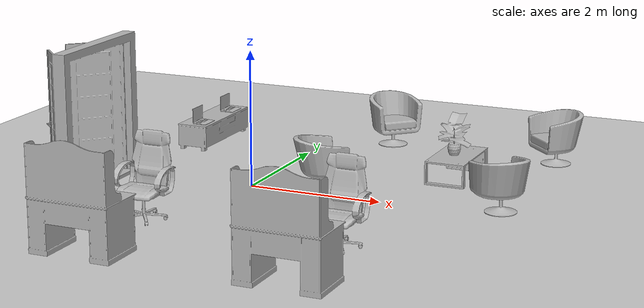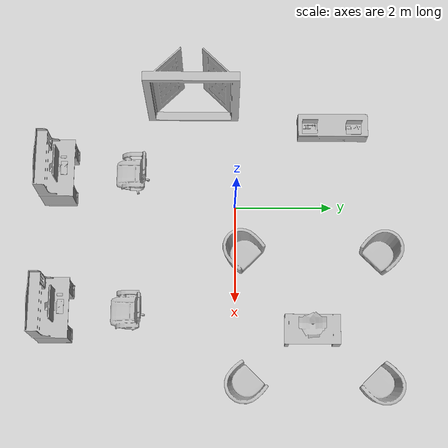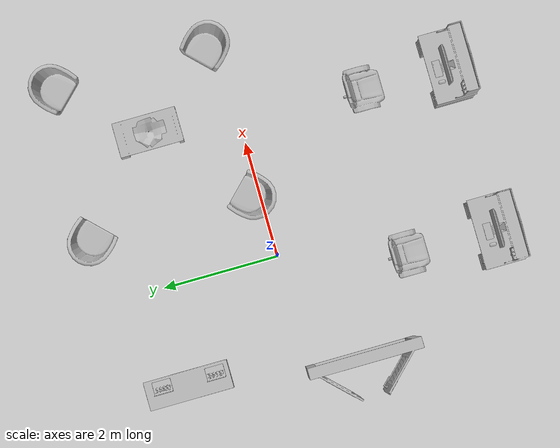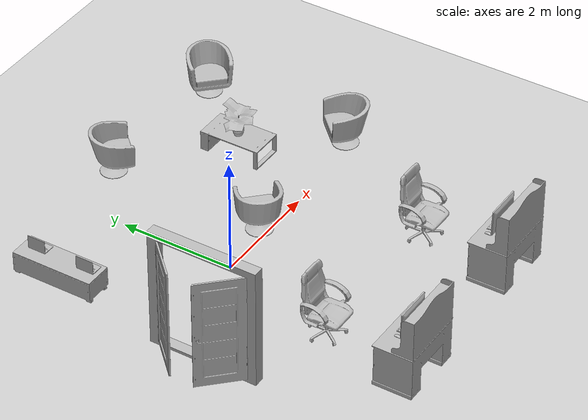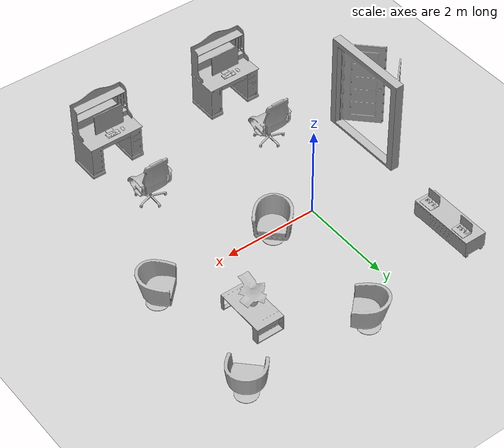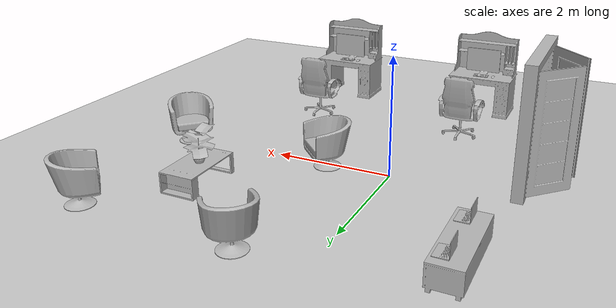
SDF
<sdf version="1.4">
 <world name="default">
  <light name="sun" type="directional">
   <pose>0 0 10 0 -0 0</pose>
   <diffuse>0.8 0.8 0.8 1</diffuse>
   <specular>0.2 0.2 0.2 1</specular>
   <attenuation>
    <range>1000</range>
    <constant>0.9</constant>
    <linear>0.01</linear>
    <quadratic>0.001</quadratic>
   </attenuation>
   <direction>-0.5 0.1 -0.9</direction>
  </light>
  <model name="ground_plane">
   <static>1</static>
   <link name="link">
    <collision name="collision">
     <geometry><plane><normal>0 0 1</normal><size>100 100</size></plane></geometry>
     <surface><friction><ode><mu>100</mu><mu2>50</mu2></ode></friction></surface>
    </collision>
    <visual name="visual">
     <cast_shadows>0</cast_shadows>
     <geometry><plane><normal>0 0 1</normal><size>100 100</size></plane></geometry>
     <material>
      <script><uri>file://media/materials/scripts/gazebo.material</uri><name>Gazebo/Grey</name></script>
     </material>
    </visual>
    <velocity_decay><linear>0</linear><angular>0</angular></velocity_decay>
   </link>
  </model>
  <physics type="ode">
   <max_step_size>0.001</max_step_size>
   <real_time_factor>1</real_time_factor>
   <real_time_update_rate>1000</real_time_update_rate>
   <gravity>0 0 -9.8</gravity>
  </physics>
  <scene><ambient>0.4 0.4 0.4 1</ambient><background>0.7 0.7 0.7 1</background><shadows>1</shadows></scene>
  <spherical_coordinates>
   <surface_model>EARTH_WGS84</surface_model>
   <latitude_deg>0</latitude_deg>
   <longitude_deg>0</longitude_deg>
   <elevation>0</elevation>
   <heading_deg>0</heading_deg>
  </spherical_coordinates>
  <model name="s__593_0">
   <pose>-0.595494 -3.61203 0.03 0 -0 1.5708</pose>
   <static>1</static>
   <link name="link">
    <collision name="collision"><geometry><box><size>0.69002 1.2 2</size></box></geometry></collision>
    <visual name="visual"><geometry><mesh><uri>model://s__593/s__593.dae</uri></mesh></geometry></visual>
    <velocity_decay><linear>0</linear><angular>0</angular></velocity_decay>
   </link>
  </model>
  <model name="s__593_1">
   <pose>2.27162 -3.59359 0.03 0 -0 1.5708</pose>
   <static>1</static>
   <link name="link">
    <collision name="collision"><geometry><box><size>0.69002 1.2 2</size></box></geometry></collision>
    <visual name="visual"><geometry><mesh><uri>model://s__593/s__593.dae</uri></mesh></geometry></visual>
    <velocity_decay><linear>0</linear><angular>0</angular></velocity_decay>
   </link>
  </model>
  <model name="s__574_0">
   <pose>-0.571501 -2.11602 0.03 0 0 -1.5708</pose>
   <static>1</static>
   <link name="link">
    <collision name="collision"><geometry><box><size>0.649999 0.74 2</size></box></geometry></collision>
    <visual name="visual"><geometry><mesh><uri>model://s__574/s__574.dae</uri></mesh></geometry></visual>
    <velocity_decay><linear>0</linear><angular>0</angular></velocity_decay>
   </link>
  </model>
  <model name="s__574_1">
   <pose>2.2863 -2.1422 0.03 0 0 -1.5708</pose>
   <static>1</static>
   <link name="link">
    <collision name="collision"><geometry><box><size>0.649999 0.74 2</size></box></geometry></collision>
    <visual name="visual"><geometry><mesh><uri>model://s__574/s__574.dae</uri></mesh></geometry></visual>
    <velocity_decay><linear>0</linear><angular>0</angular></velocity_decay>
   </link>
  </model>
  <model name="s__611_0">
   <pose>1.00897 0.098454 0.03 0 -0 0.785398</pose>
   <static>1</static>
   <link name="link">
    <collision name="collision"><geometry><box><size>0.699828 0.77 2</size></box></geometry></collision>
    <visual name="visual"><geometry><mesh><uri>model://s__611/s__611.dae</uri></mesh></geometry></visual>
    <velocity_decay><linear>0</linear><angular>0</angular></velocity_decay>
   </link>
  </model>
  <model name="s__611_1">
   <pose>3.76347 2.90263 0.03 0 0 -2.36411</pose>
   <static>1</static>
   <link name="link">
    <collision name="collision"><geometry><box><size>0.699828 0.77 2</size></box></geometry></collision>
    <visual name="visual"><geometry><mesh><uri>model://s__611/s__611.dae</uri></mesh></geometry></visual>
    <velocity_decay><linear>0</linear><angular>0</angular></velocity_decay>
   </link>
  </model>
  <model name="s__611_2">
   <pose>1.01476 2.98163 0.03 0 0 -0.785398</pose>
   <static>1</static>
   <link name="link">
    <collision name="collision"><geometry><box><size>0.699828 0.77 2</size></box></geometry></collision>
    <visual name="visual"><geometry><mesh><uri>model://s__611/s__611.dae</uri></mesh></geometry></visual>
    <velocity_decay><linear>0</linear><angular>0</angular></velocity_decay>
   </link>
  </model>
  <model name="s__611_3">
   <pose>3.7545 0.140036 0.03 0 -0 2.35619</pose>
   <static>1</static>
   <link name="link">
    <collision name="collision"><geometry><box><size>0.699828 0.77 2</size></box></geometry></collision>
    <visual name="visual"><geometry><mesh><uri>model://s__611/s__611.dae</uri></mesh></geometry></visual>
    <velocity_decay><linear>0</linear><angular>0</angular></velocity_decay>
   </link>
  </model>
  <model name="s__561_0">
   <pose>2.59999 1.53998 0.03 0 -0 0</pose>
   <static>1</static>
   <link name="link">
    <collision name="collision"><geometry><box><size>0.6 1.1 2</size></box></geometry></collision>
    <visual name="visual"><geometry><mesh><uri>model://s__561/s__561.dae</uri></mesh></geometry></visual>
    <velocity_decay><linear>0</linear><angular>0</angular></velocity_decay>
   </link>
  </model>
  <model name="737_0">
   <pose>2.57058 1.48517 0.38 0 -0 0</pose>
   <static>1</static>
   <link name="link">
    <collision name="collision"><geometry><box><size>0.495187 0.54313 2</size></box></geometry></collision>
    <visual name="visual"><geometry><mesh><uri>model://737/737.dae</uri></mesh></geometry></visual>
    <velocity_decay><linear>0</linear><angular>0</angular></velocity_decay>
   </link>
  </model>
  <model name="189_0">
   <pose>-0.583496 -3.58983 0.782224 0 -0 1.5708</pose>
   <static>1</static>
   <link name="link">
    <collision name="collision"><geometry><box><size>0.359507 0.6495 2</size></box></geometry></collision>
    <visual name="visual"><geometry><mesh><uri>model://189/189.dae</uri></mesh></geometry></visual>
    <velocity_decay><linear>0</linear><angular>0</angular></velocity_decay>
   </link>
  </model>
  <model name="189_1">
   <pose>2.25583 -3.52833 0.782224 0 -0 1.5708</pose>
   <static>1</static>
   <link name="link">
    <collision name="collision"><geometry><box><size>0.359507 0.6495 2</size></box></geometry></collision>
    <visual name="visual"><geometry><mesh><uri>model://189/189.dae</uri></mesh></geometry></visual>
    <velocity_decay><linear>0</linear><angular>0</angular></velocity_decay>
   </link>
  </model>
  <model name="117_0">
   <pose>-1.68443 2.03268 0.03 0 -0 0</pose>
   <static>1</static>
   <link name="link">
    <collision name="collision"><geometry><box><size>0.491488 1.45 2</size></box></geometry></collision>
    <visual name="visual"><geometry><mesh><uri>model://117/117.dae</uri></mesh></geometry></visual>
    <velocity_decay><linear>0</linear><angular>0</angular></velocity_decay>
   </link>
  </model>
  <model name="120_0">
   <pose>-1.59979 1.54364 0.43 0 -0 0</pose>
   <static>1</static>
   <link name="link">
    <collision name="collision"><geometry><box><size>0.225973 0.32 2</size></box></geometry></collision>
    <visual name="visual"><geometry><mesh><uri>model://120/120.dae</uri></mesh></geometry></visual>
    <velocity_decay><linear>0</linear><angular>0</angular></velocity_decay>
   </link>
  </model>
  <model name="120_1">
   <pose>-1.5899 2.45845 0.43 0 -0 0</pose>
   <static>1</static>
   <link name="link">
    <collision name="collision"><geometry><box><size>0.225973 0.32 2</size></box></geometry></collision>
    <visual name="visual"><geometry><mesh><uri>model://120/120.dae</uri></mesh></geometry></visual>
    <velocity_decay><linear>0</linear><angular>0</angular></velocity_decay>
   </link>
  </model>
  <model name="133_0">
   <pose>-2.0192 -0.887699 0 0 0 -3e-06</pose>
   <static>1</static>
   <link name="link">
    <collision name="collision"><geometry><box><size>0.769999 1.9 2</size></box></geometry></collision>
    <visual name="visual"><geometry><mesh><uri>model://133/133.dae</uri></mesh></geometry></visual>
    <velocity_decay><linear>0</linear><angular>0</angular></velocity_decay>
   </link>
  </model>
 </world>
</sdf>
